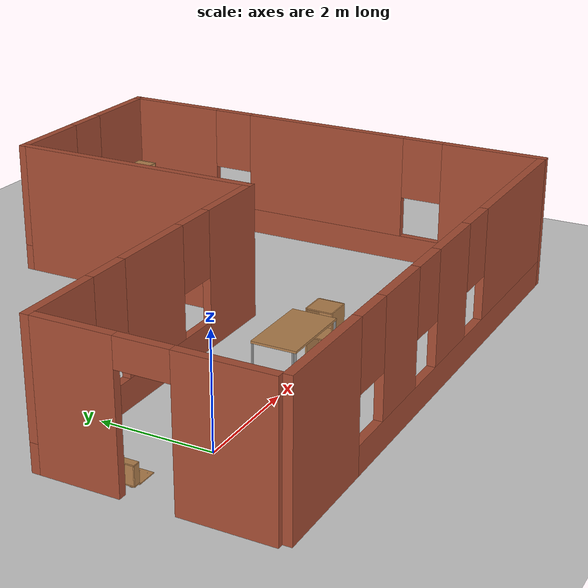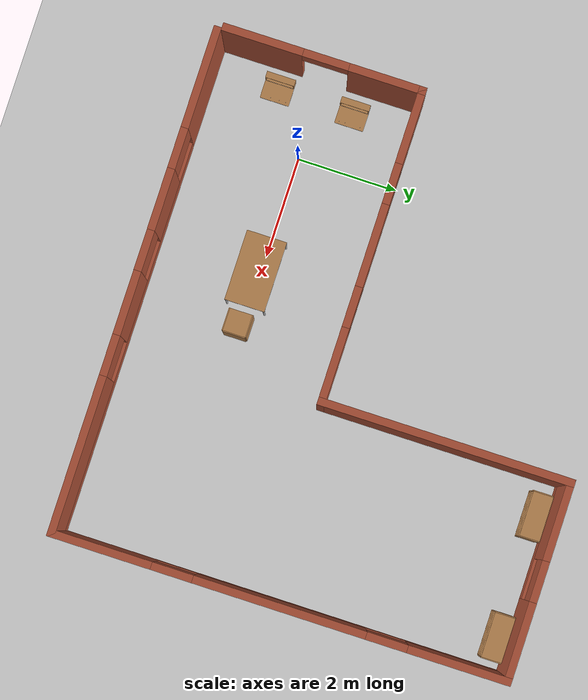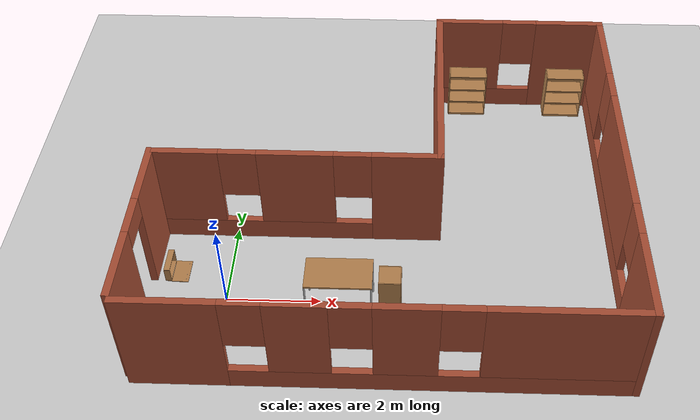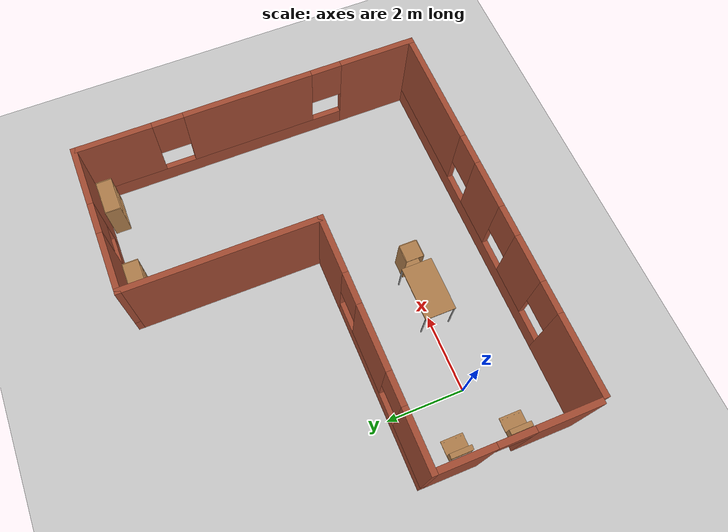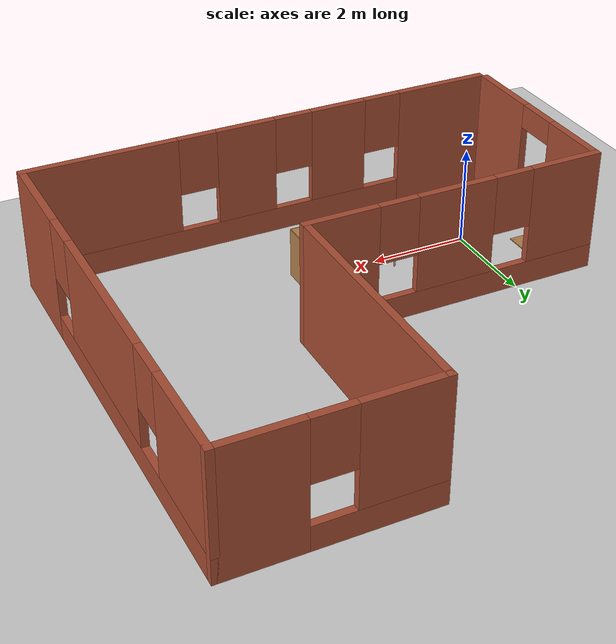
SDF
<sdf version="1.6">
 <world name="default">
  <light name="sun" type="directional">
   <pose>0 0 15 0 -0 0</pose>
   <diffuse>1 1 1 1</diffuse>
   <specular>0.1 0.1 0.1 1</specular>
   <attenuation>
    <range>1000</range>
    <constant>0.9</constant>
    <linear>0.01</linear>
    <quadratic>0.001</quadratic>
   </attenuation>
   <direction>-0.5 0.5 -1</direction>
  </light>
  <model name="ground_plane">
   <static>1</static>
   <link name="link">
    <collision name="collision">
     <geometry><plane><normal>0 0 1</normal><size>100 100</size></plane></geometry>
     <surface><friction><ode><mu>100</mu><mu2>50</mu2></ode></friction></surface>
    </collision>
    <visual name="visual">
     <transparency>1</transparency>
     <cast_shadows>0</cast_shadows>
     <geometry><plane><normal>0 0 1</normal><size>100 100</size></plane></geometry>
     <material>
      <script><uri>file://media/materials/scripts/gazebo.material</uri><name>Gazebo/Grey</name></script>
     </material>
    </visual>
   </link>
  </model>
  <gravity>0 0 -9.8</gravity>
  <magnetic_field>6e-06 2.3e-05 -4.2e-05</magnetic_field>
  <atmosphere type="adiabatic"/>
  <physics name="default_physics" default="0" type="ode">
   <max_step_size>0.001</max_step_size>
   <real_time_factor>1</real_time_factor>
   <real_time_update_rate>1000</real_time_update_rate>
  </physics>
  <scene><ambient>0.4 0.4 0.4 1</ambient><background>0.7 0.7 0.7 1</background><shadows>1</shadows></scene>
  <spherical_coordinates>
   <surface_model>EARTH_WGS84</surface_model>
   <latitude_deg>0</latitude_deg>
   <longitude_deg>0</longitude_deg>
   <elevation>0</elevation>
   <heading_deg>0</heading_deg>
  </spherical_coordinates>
  <model name="room3">
   <pose>3.33877 2.33833 0 0 -0 0</pose>
   <link name="Wall_0">
    <pose>0.05 -4.425 0 0 -0 0</pose>
    <visual name="Wall_0_Visual_0">
     <pose>-3.99903 0 1.25 0 -0 0</pose>
     <geometry><box><size>2.00194 0.15 2.5</size></box></geometry>
     <material>
      <script><uri>file://media/materials/scripts/gazebo.material</uri><name>Gazebo/Bricks</name></script>
      <ambient>0.996078 0.47451 0.0196078 1</ambient>
     </material>
    </visual>
    <collision name="Wall_0_Collision_0">
     <geometry><box><size>2.00194 0.15 2.5</size></box></geometry>
     <pose>-3.99903 0 1.25 0 -0 0</pose>
    </collision>
    <visual name="Wall_0_Visual_1">
     <pose>1.00097 0 0.25 0 -0 0</pose>
     <geometry><box><size>7.99806 0.15 0.5</size></box></geometry>
     <material>
      <script><uri>file://media/materials/scripts/gazebo.material</uri><name>Gazebo/Bricks</name></script>
      <ambient>0.996078 0.47451 0.0196078 1</ambient>
     </material>
    </visual>
    <collision name="Wall_0_Collision_1">
     <geometry><box><size>7.99806 0.15 0.5</size></box></geometry>
     <pose>1.00097 0 0.25 0 -0 0</pose>
    </collision>
    <visual name="Wall_0_Visual_2">
     <pose>-1.59428 0 1.5 0 -0 0</pose>
     <geometry><box><size>1.20755 0.15 2</size></box></geometry>
     <material>
      <script><uri>file://media/materials/scripts/gazebo.material</uri><name>Gazebo/Bricks</name></script>
      <ambient>0.996078 0.47451 0.0196078 1</ambient>
     </material>
    </visual>
    <collision name="Wall_0_Collision_2">
     <geometry><box><size>1.20755 0.15 2</size></box></geometry>
     <pose>-1.59428 0 1.5 0 -0 0</pose>
    </collision>
    <visual name="Wall_0_Visual_3">
     <pose>0.436084 0 1.5 0 -0 0</pose>
     <geometry><box><size>1.25318 0.15 2</size></box></geometry>
     <material>
      <script><uri>file://media/materials/scripts/gazebo.material</uri><name>Gazebo/Bricks</name></script>
      <ambient>0.996078 0.47451 0.0196078 1</ambient>
     </material>
    </visual>
    <collision name="Wall_0_Collision_3">
     <geometry><box><size>1.25318 0.15 2</size></box></geometry>
     <pose>0.436084 0 1.5 0 -0 0</pose>
    </collision>
    <visual name="Wall_0_Visual_4">
     <pose>3.43134 0 1.5 0 -0 0</pose>
     <geometry><box><size>3.13733 0.15 2</size></box></geometry>
     <material>
      <script><uri>file://media/materials/scripts/gazebo.material</uri><name>Gazebo/Bricks</name></script>
      <ambient>0.996078 0.47451 0.0196078 1</ambient>
     </material>
    </visual>
    <collision name="Wall_0_Collision_4">
     <geometry><box><size>3.13733 0.15 2</size></box></geometry>
     <pose>3.43134 0 1.5 0 -0 0</pose>
    </collision>
    <visual name="Wall_0_Visual_5">
     <pose>-2.59806 0 1.9 0 -0 0</pose>
     <geometry><box><size>0.8 0.15 1.2</size></box></geometry>
     <material>
      <script><uri>file://media/materials/scripts/gazebo.material</uri><name>Gazebo/Bricks</name></script>
      <ambient>0.996078 0.47451 0.0196078 1</ambient>
     </material>
    </visual>
    <collision name="Wall_0_Collision_5">
     <geometry><box><size>0.8 0.15 1.2</size></box></geometry>
     <pose>-2.59806 0 1.9 0 -0 0</pose>
    </collision>
    <visual name="Wall_0_Visual_6">
     <pose>-0.590506 0 1.9 0 -0 0</pose>
     <geometry><box><size>0.8 0.15 1.2</size></box></geometry>
     <material>
      <script><uri>file://media/materials/scripts/gazebo.material</uri><name>Gazebo/Bricks</name></script>
      <ambient>0.996078 0.47451 0.0196078 1</ambient>
     </material>
    </visual>
    <collision name="Wall_0_Collision_6">
     <geometry><box><size>0.8 0.15 1.2</size></box></geometry>
     <pose>-0.590506 0 1.9 0 -0 0</pose>
    </collision>
    <visual name="Wall_0_Visual_7">
     <pose>1.46267 0 1.9 0 -0 0</pose>
     <geometry><box><size>0.8 0.15 1.2</size></box></geometry>
     <material>
      <script><uri>file://media/materials/scripts/gazebo.material</uri><name>Gazebo/Bricks</name></script>
      <ambient>0.996078 0.47451 0.0196078 1</ambient>
     </material>
    </visual>
    <collision name="Wall_0_Collision_7">
     <geometry><box><size>0.8 0.15 1.2</size></box></geometry>
     <pose>1.46267 0 1.9 0 -0 0</pose>
    </collision>
   </link>
   <link name="Wall_1">
    <pose>4.975 0 0 0 -0 1.5708</pose>
    <visual name="Wall_1_Visual_0">
     <pose>-3.49143 0 1.25 0 -0 0</pose>
     <geometry><box><size>2.01715 0.15 2.5</size></box></geometry>
     <material>
      <script><uri>file://media/materials/scripts/gazebo.material</uri><name>Gazebo/Bricks</name></script>
      <ambient>0.996078 0.47451 0.0196078 1</ambient>
     </material>
    </visual>
    <collision name="Wall_1_Collision_0">
     <geometry><box><size>2.01715 0.15 2.5</size></box></geometry>
     <pose>-3.49143 0 1.25 0 -0 0</pose>
    </collision>
    <visual name="Wall_1_Visual_1">
     <pose>1.00857 0 0.25 0 -0 0</pose>
     <geometry><box><size>6.98285 0.15 0.5</size></box></geometry>
     <material>
      <script><uri>file://media/materials/scripts/gazebo.material</uri><name>Gazebo/Bricks</name></script>
      <ambient>0.996078 0.47451 0.0196078 1</ambient>
     </material>
    </visual>
    <collision name="Wall_1_Collision_1">
     <geometry><box><size>6.98285 0.15 0.5</size></box></geometry>
     <pose>1.00857 0 0.25 0 -0 0</pose>
    </collision>
    <visual name="Wall_1_Visual_2">
     <pose>0.000746 0 1.5 0 -0 0</pose>
     <geometry><box><size>3.3672 0.15 2</size></box></geometry>
     <material>
      <script><uri>file://media/materials/scripts/gazebo.material</uri><name>Gazebo/Bricks</name></script>
      <ambient>0.996078 0.47451 0.0196078 1</ambient>
     </material>
    </visual>
    <collision name="Wall_1_Collision_2">
     <geometry><box><size>3.3672 0.15 2</size></box></geometry>
     <pose>0.000746 0 1.5 0 -0 0</pose>
    </collision>
    <visual name="Wall_1_Visual_3">
     <pose>3.49217 0 1.5 0 -0 0</pose>
     <geometry><box><size>2.01566 0.15 2</size></box></geometry>
     <material>
      <script><uri>file://media/materials/scripts/gazebo.material</uri><name>Gazebo/Bricks</name></script>
      <ambient>0.996078 0.47451 0.0196078 1</ambient>
     </material>
    </visual>
    <collision name="Wall_1_Collision_3">
     <geometry><box><size>2.01566 0.15 2</size></box></geometry>
     <pose>3.49217 0 1.5 0 -0 0</pose>
    </collision>
    <visual name="Wall_1_Visual_4">
     <pose>-2.08285 0 1.9 0 -0 0</pose>
     <geometry><box><size>0.8 0.15 1.2</size></box></geometry>
     <material>
      <script><uri>file://media/materials/scripts/gazebo.material</uri><name>Gazebo/Bricks</name></script>
      <ambient>0.996078 0.47451 0.0196078 1</ambient>
     </material>
    </visual>
    <collision name="Wall_1_Collision_4">
     <geometry><box><size>0.8 0.15 1.2</size></box></geometry>
     <pose>-2.08285 0 1.9 0 -0 0</pose>
    </collision>
    <visual name="Wall_1_Visual_5">
     <pose>2.08434 0 1.9 0 -0 0</pose>
     <geometry><box><size>0.8 0.15 1.2</size></box></geometry>
     <material>
      <script><uri>file://media/materials/scripts/gazebo.material</uri><name>Gazebo/Bricks</name></script>
      <ambient>0.996078 0.47451 0.0196078 1</ambient>
     </material>
    </visual>
    <collision name="Wall_1_Collision_5">
     <geometry><box><size>0.8 0.15 1.2</size></box></geometry>
     <pose>2.08434 0 1.9 0 -0 0</pose>
    </collision>
   </link>
   <link name="Wall_2">
    <pose>3.05 4.425 0 0 -0 3.14159</pose>
    <visual name="Wall_2_Visual_0">
     <pose>-1.19938 0 1.25 0 -0 0</pose>
     <geometry><box><size>1.60124 0.15 2.5</size></box></geometry>
     <material>
      <script><uri>file://media/materials/scripts/gazebo.material</uri><name>Gazebo/Bricks</name></script>
      <ambient>0.996078 0.47451 0.0196078 1</ambient>
     </material>
    </visual>
    <collision name="Wall_2_Collision_0">
     <geometry><box><size>1.60124 0.15 2.5</size></box></geometry>
     <pose>-1.19938 0 1.25 0 -0 0</pose>
    </collision>
    <visual name="Wall_2_Visual_1">
     <pose>0.800621 0 0.25 0 -0 0</pose>
     <geometry><box><size>2.39876 0.15 0.5</size></box></geometry>
     <material>
      <script><uri>file://media/materials/scripts/gazebo.material</uri><name>Gazebo/Bricks</name></script>
      <ambient>0.996078 0.47451 0.0196078 1</ambient>
     </material>
    </visual>
    <collision name="Wall_2_Collision_1">
     <geometry><box><size>2.39876 0.15 0.5</size></box></geometry>
     <pose>0.800621 0 0.25 0 -0 0</pose>
    </collision>
    <visual name="Wall_2_Visual_2">
     <pose>1.20062 0 1.5 0 -0 0</pose>
     <geometry><box><size>1.59876 0.15 2</size></box></geometry>
     <material>
      <script><uri>file://media/materials/scripts/gazebo.material</uri><name>Gazebo/Bricks</name></script>
      <ambient>0.996078 0.47451 0.0196078 1</ambient>
     </material>
    </visual>
    <collision name="Wall_2_Collision_2">
     <geometry><box><size>1.59876 0.15 2</size></box></geometry>
     <pose>1.20062 0 1.5 0 -0 0</pose>
    </collision>
    <visual name="Wall_2_Visual_3">
     <pose>0.001241 0 1.9 0 -0 0</pose>
     <geometry><box><size>0.8 0.15 1.2</size></box></geometry>
     <material>
      <script><uri>file://media/materials/scripts/gazebo.material</uri><name>Gazebo/Bricks</name></script>
      <ambient>0.996078 0.47451 0.0196078 1</ambient>
     </material>
    </visual>
    <collision name="Wall_2_Collision_3">
     <geometry><box><size>0.8 0.15 1.2</size></box></geometry>
     <pose>0.001241 0 1.9 0 -0 0</pose>
    </collision>
   </link>
   <link name="Wall_3">
    <collision name="Wall_3_Collision">
     <geometry><box><size>5 0.15 2.5</size></box></geometry>
     <pose>0 0 1.25 0 -0 0</pose>
    </collision>
    <visual name="Wall_3_Visual">
     <pose>0 0 1.25 0 -0 0</pose>
     <geometry><box><size>5 0.15 2.5</size></box></geometry>
     <material>
      <script><uri>file://media/materials/scripts/gazebo.material</uri><name>Gazebo/Bricks</name></script>
      <ambient>0.996078 0.47451 0.0196078 1</ambient>
     </material>
    </visual>
    <pose>1.125 2 0 0 0 -1.5708</pose>
   </link>
   <link name="Wall_4">
    <pose>-1.925 -0.425 0 0 -0 3.14159</pose>
    <visual name="Wall_4_Visual_0">
     <pose>-2.36349 0 1.25 0 -0 0</pose>
     <geometry><box><size>1.52301 0.15 2.5</size></box></geometry>
     <material>
      <script><uri>file://media/materials/scripts/gazebo.material</uri><name>Gazebo/Bricks</name></script>
      <ambient>0.996078 0.47451 0.0196078 1</ambient>
     </material>
    </visual>
    <collision name="Wall_4_Collision_0">
     <geometry><box><size>1.52301 0.15 2.5</size></box></geometry>
     <pose>-2.36349 0 1.25 0 -0 0</pose>
    </collision>
    <visual name="Wall_4_Visual_1">
     <pose>0.761506 0 0.25 0 -0 0</pose>
     <geometry><box><size>4.72699 0.15 0.5</size></box></geometry>
     <material>
      <script><uri>file://media/materials/scripts/gazebo.material</uri><name>Gazebo/Bricks</name></script>
      <ambient>0.996078 0.47451 0.0196078 1</ambient>
     </material>
    </visual>
    <collision name="Wall_4_Collision_1">
     <geometry><box><size>4.72699 0.15 0.5</size></box></geometry>
     <pose>0.761506 0 0.25 0 -0 0</pose>
    </collision>
    <visual name="Wall_4_Visual_2">
     <pose>0.007107 0 1.5 0 -0 0</pose>
     <geometry><box><size>1.61819 0.15 2</size></box></geometry>
     <material>
      <script><uri>file://media/materials/scripts/gazebo.material</uri><name>Gazebo/Bricks</name></script>
      <ambient>0.996078 0.47451 0.0196078 1</ambient>
     </material>
    </visual>
    <collision name="Wall_4_Collision_2">
     <geometry><box><size>1.61819 0.15 2</size></box></geometry>
     <pose>0.007107 0 1.5 0 -0 0</pose>
    </collision>
    <visual name="Wall_4_Visual_3">
     <pose>2.3706 0 1.5 0 -0 0</pose>
     <geometry><box><size>1.5088 0.15 2</size></box></geometry>
     <material>
      <script><uri>file://media/materials/scripts/gazebo.material</uri><name>Gazebo/Bricks</name></script>
      <ambient>0.996078 0.47451 0.0196078 1</ambient>
     </material>
    </visual>
    <collision name="Wall_4_Collision_3">
     <geometry><box><size>1.5088 0.15 2</size></box></geometry>
     <pose>2.3706 0 1.5 0 -0 0</pose>
    </collision>
    <visual name="Wall_4_Visual_4">
     <pose>-1.20199 0 1.9 0 -0 0</pose>
     <geometry><box><size>0.8 0.15 1.2</size></box></geometry>
     <material>
      <script><uri>file://media/materials/scripts/gazebo.material</uri><name>Gazebo/Bricks</name></script>
      <ambient>0.996078 0.47451 0.0196078 1</ambient>
     </material>
    </visual>
    <collision name="Wall_4_Collision_4">
     <geometry><box><size>0.8 0.15 1.2</size></box></geometry>
     <pose>-1.20199 0 1.9 0 -0 0</pose>
    </collision>
    <visual name="Wall_4_Visual_5">
     <pose>1.2162 0 1.9 0 -0 0</pose>
     <geometry><box><size>0.8 0.15 1.2</size></box></geometry>
     <material>
      <script><uri>file://media/materials/scripts/gazebo.material</uri><name>Gazebo/Bricks</name></script>
      <ambient>0.996078 0.47451 0.0196078 1</ambient>
     </material>
    </visual>
    <collision name="Wall_4_Collision_5">
     <geometry><box><size>0.8 0.15 1.2</size></box></geometry>
     <pose>1.2162 0 1.9 0 -0 0</pose>
    </collision>
   </link>
   <link name="Wall_5">
    <pose>-4.975 -2.35 0 0 0 -1.5708</pose>
    <visual name="Wall_5_Visual_0">
     <pose>-1.24451 0 1.25 0 -0 0</pose>
     <geometry><box><size>1.51098 0.15 2.5</size></box></geometry>
     <material>
      <script><uri>file://media/materials/scripts/gazebo.material</uri><name>Gazebo/Bricks</name></script>
      <ambient>0.996078 0.47451 0.0196078 1</ambient>
     </material>
    </visual>
    <collision name="Wall_5_Collision_0">
     <geometry><box><size>1.51098 0.15 2.5</size></box></geometry>
     <pose>-1.24451 0 1.25 0 -0 0</pose>
    </collision>
    <visual name="Wall_5_Visual_1">
     <pose>1.20549 0 1.25 0 -0 0</pose>
     <geometry><box><size>1.58902 0.15 2.5</size></box></geometry>
     <material>
      <script><uri>file://media/materials/scripts/gazebo.material</uri><name>Gazebo/Bricks</name></script>
      <ambient>0.996078 0.47451 0.0196078 1</ambient>
     </material>
    </visual>
    <collision name="Wall_5_Collision_1">
     <geometry><box><size>1.58902 0.15 2.5</size></box></geometry>
     <pose>1.20549 0 1.25 0 -0 0</pose>
    </collision>
    <visual name="Wall_5_Visual_2">
     <pose>-0.039016 0 2.25 0 -0 0</pose>
     <geometry><box><size>0.9 0.15 0.5</size></box></geometry>
     <material>
      <script><uri>file://media/materials/scripts/gazebo.material</uri><name>Gazebo/Bricks</name></script>
      <ambient>0.996078 0.47451 0.0196078 1</ambient>
     </material>
    </visual>
    <collision name="Wall_5_Collision_2">
     <geometry><box><size>0.9 0.15 0.5</size></box></geometry>
     <pose>-0.039016 0 2.25 0 -0 0</pose>
    </collision>
   </link>
   <static>1</static>
  </model>
  <model name="table">
   <static>0</static>
   <link name="link">
    <collision name="surface">
     <pose>0 0 1 0 -0 0</pose>
     <geometry><box><size>1.5 0.8 0.03</size></box></geometry>
     <surface><friction><ode><mu>0.6</mu><mu2>0.6</mu2></ode></friction></surface>
    </collision>
    <visual name="visual1">
     <pose>0 0 1 0 -0 0</pose>
     <geometry><box><size>1.4 0.8 0.04</size></box></geometry>
     <material>
      <script><uri>file://media/materials/scripts/gazebo.material</uri><name>Gazebo/Wood</name></script>
     </material>
    </visual>
    <collision name="front_left_leg">
     <pose>0.68 0.38 0.5 0 -0 0</pose>
     <geometry><cylinder><radius>0.02</radius><length>1</length></cylinder></geometry>
    </collision>
    <visual name="front_left_leg">
     <pose>0.68 0.38 0.5 0 -0 0</pose>
     <geometry><cylinder><radius>0.02</radius><length>1</length></cylinder></geometry>
     <material>
      <script><uri>file://media/materials/scripts/gazebo.material</uri><name>Gazebo/Grey</name></script>
     </material>
    </visual>
    <collision name="front_right_leg">
     <pose>0.68 -0.38 0.5 0 -0 0</pose>
     <geometry><cylinder><radius>0.02</radius><length>1</length></cylinder></geometry>
    </collision>
    <visual name="front_right_leg">
     <pose>0.68 -0.38 0.5 0 -0 0</pose>
     <geometry><cylinder><radius>0.02</radius><length>1</length></cylinder></geometry>
     <material>
      <script><uri>file://media/materials/scripts/gazebo.material</uri><name>Gazebo/Grey</name></script>
     </material>
    </visual>
    <collision name="back_right_leg">
     <pose>-0.68 -0.38 0.5 0 -0 0</pose>
     <geometry><cylinder><radius>0.02</radius><length>1</length></cylinder></geometry>
    </collision>
    <visual name="back_right_leg">
     <pose>-0.68 -0.38 0.5 0 -0 0</pose>
     <geometry><cylinder><radius>0.02</radius><length>1</length></cylinder></geometry>
     <material>
      <script><uri>file://media/materials/scripts/gazebo.material</uri><name>Gazebo/Grey</name></script>
     </material>
    </visual>
    <collision name="back_left_leg">
     <pose>-0.68 0.38 0.5 0 -0 0</pose>
     <geometry><cylinder><radius>0.02</radius><length>1</length></cylinder></geometry>
    </collision>
    <visual name="back_left_leg">
     <pose>-0.68 0.38 0.5 0 -0 0</pose>
     <geometry><cylinder><radius>0.02</radius><length>1</length></cylinder></geometry>
     <material>
      <script><uri>file://media/materials/scripts/gazebo.material</uri><name>Gazebo/Grey</name></script>
     </material>
    </visual>
    <inertial>
     <inertia><ixx>1</ixx><ixy>0</ixy><ixz>0</ixz><iyy>1</iyy><iyz>0</iyz><izz>1</izz></inertia>
     <mass>1</mass>
    </inertial>
   </link>
   <pose>2.41114 -0.066281 -9e-06 2e-06 -0 0</pose>
  </model>
  <light name="sun_0" type="directional">
   <pose>2.06323 3.68187 15 0 -0 0</pose>
   <diffuse>1 1 1 1</diffuse>
   <specular>0.1 0.1 0.1 1</specular>
   <attenuation>
    <range>1000</range>
    <constant>0.9</constant>
    <linear>0.01</linear>
    <quadratic>0.001</quadratic>
   </attenuation>
   <direction>-0.5 0.5 -1</direction>
  </light>
  <model name="bookshelf">
   <static>1</static>
   <link name="link">
    <inertial><mass>1</mass></inertial>
    <collision name="back">
     <pose>0 0.005 0.6 0 -0 0</pose>
     <geometry><box><size>0.9 0.01 1.2</size></box></geometry>
    </collision>
    <visual name="visual1">
     <pose>0 0.005 0.6 0 -0 0</pose>
     <geometry><box><size>0.9 0.01 1.2</size></box></geometry>
     <material>
      <script><uri>file://media/materials/scripts/gazebo.material</uri><name>Gazebo/Wood</name></script>
     </material>
    </visual>
    <collision name="left_side">
     <pose>0.45 -0.195 0.6 0 -0 0</pose>
     <geometry><box><size>0.02 0.4 1.2</size></box></geometry>
    </collision>
    <visual name="visual2">
     <pose>0.45 -0.195 0.6 0 -0 0</pose>
     <geometry><box><size>0.02 0.4 1.2</size></box></geometry>
     <material>
      <script><uri>file://media/materials/scripts/gazebo.material</uri><name>Gazebo/Wood</name></script>
     </material>
    </visual>
    <collision name="right_side">
     <pose>-0.45 -0.195 0.6 0 -0 0</pose>
     <geometry><box><size>0.02 0.4 1.2</size></box></geometry>
    </collision>
    <visual name="visual3">
     <pose>-0.45 -0.195 0.6 0 -0 0</pose>
     <geometry><box><size>0.02 0.4 1.2</size></box></geometry>
     <material>
      <script><uri>file://media/materials/scripts/gazebo.material</uri><name>Gazebo/Wood</name></script>
     </material>
    </visual>
    <collision name="bottom">
     <pose>0 -0.195 0.03 0 -0 0</pose>
     <geometry><box><size>0.88 0.4 0.06</size></box></geometry>
    </collision>
    <visual name="visual4">
     <pose>0 -0.195 0.03 0 -0 0</pose>
     <geometry><box><size>0.88 0.4 0.06</size></box></geometry>
     <material>
      <script><uri>file://media/materials/scripts/gazebo.material</uri><name>Gazebo/Wood</name></script>
     </material>
    </visual>
    <collision name="top">
     <pose>0 -0.195 1.19 0 -0 0</pose>
     <geometry><box><size>0.88 0.4 0.02</size></box></geometry>
    </collision>
    <visual name="visual5">
     <pose>0 -0.195 1.19 0 -0 0</pose>
     <geometry><box><size>0.88 0.4 0.02</size></box></geometry>
     <material>
      <script><uri>file://media/materials/scripts/gazebo.material</uri><name>Gazebo/Wood</name></script>
     </material>
    </visual>
    <collision name="low_shelf">
     <pose>0 -0.195 0.43 0 -0 0</pose>
     <geometry><box><size>0.88 0.4 0.02</size></box></geometry>
    </collision>
    <visual name="visual6">
     <pose>0 -0.195 0.43 0 -0 0</pose>
     <geometry><box><size>0.88 0.4 0.02</size></box></geometry>
     <material>
      <script><uri>file://media/materials/scripts/gazebo.material</uri><name>Gazebo/Wood</name></script>
     </material>
    </visual>
    <collision name="high_shelf">
     <pose>0 -0.195 0.8 0 -0 0</pose>
     <geometry><box><size>0.88 0.4 0.02</size></box></geometry>
    </collision>
    <visual name="visual7">
     <pose>0 -0.195 0.8 0 -0 0</pose>
     <geometry><box><size>0.88 0.4 0.02</size></box></geometry>
     <material>
      <script><uri>file://media/materials/scripts/gazebo.material</uri><name>Gazebo/Wood</name></script>
     </material>
    </visual>
   </link>
   <pose>5.21925 6.63279 0 0 -0 0</pose>
  </model>
  <model name="bookshelf_0">
   <static>1</static>
   <link name="link">
    <inertial><mass>1</mass></inertial>
    <collision name="back">
     <pose>0 0.005 0.6 0 -0 0</pose>
     <geometry><box><size>0.9 0.01 1.2</size></box></geometry>
    </collision>
    <visual name="visual1">
     <pose>0 0.005 0.6 0 -0 0</pose>
     <geometry><box><size>0.9 0.01 1.2</size></box></geometry>
     <material>
      <script><uri>file://media/materials/scripts/gazebo.material</uri><name>Gazebo/Wood</name></script>
     </material>
    </visual>
    <collision name="left_side">
     <pose>0.45 -0.195 0.6 0 -0 0</pose>
     <geometry><box><size>0.02 0.4 1.2</size></box></geometry>
    </collision>
    <visual name="visual2">
     <pose>0.45 -0.195 0.6 0 -0 0</pose>
     <geometry><box><size>0.02 0.4 1.2</size></box></geometry>
     <material>
      <script><uri>file://media/materials/scripts/gazebo.material</uri><name>Gazebo/Wood</name></script>
     </material>
    </visual>
    <collision name="right_side">
     <pose>-0.45 -0.195 0.6 0 -0 0</pose>
     <geometry><box><size>0.02 0.4 1.2</size></box></geometry>
    </collision>
    <visual name="visual3">
     <pose>-0.45 -0.195 0.6 0 -0 0</pose>
     <geometry><box><size>0.02 0.4 1.2</size></box></geometry>
     <material>
      <script><uri>file://media/materials/scripts/gazebo.material</uri><name>Gazebo/Wood</name></script>
     </material>
    </visual>
    <collision name="bottom">
     <pose>0 -0.195 0.03 0 -0 0</pose>
     <geometry><box><size>0.88 0.4 0.06</size></box></geometry>
    </collision>
    <visual name="visual4">
     <pose>0 -0.195 0.03 0 -0 0</pose>
     <geometry><box><size>0.88 0.4 0.06</size></box></geometry>
     <material>
      <script><uri>file://media/materials/scripts/gazebo.material</uri><name>Gazebo/Wood</name></script>
     </material>
    </visual>
    <collision name="top">
     <pose>0 -0.195 1.19 0 -0 0</pose>
     <geometry><box><size>0.88 0.4 0.02</size></box></geometry>
    </collision>
    <visual name="visual5">
     <pose>0 -0.195 1.19 0 -0 0</pose>
     <geometry><box><size>0.88 0.4 0.02</size></box></geometry>
     <material>
      <script><uri>file://media/materials/scripts/gazebo.material</uri><name>Gazebo/Wood</name></script>
     </material>
    </visual>
    <collision name="low_shelf">
     <pose>0 -0.195 0.43 0 -0 0</pose>
     <geometry><box><size>0.88 0.4 0.02</size></box></geometry>
    </collision>
    <visual name="visual6">
     <pose>0 -0.195 0.43 0 -0 0</pose>
     <geometry><box><size>0.88 0.4 0.02</size></box></geometry>
     <material>
      <script><uri>file://media/materials/scripts/gazebo.material</uri><name>Gazebo/Wood</name></script>
     </material>
    </visual>
    <collision name="high_shelf">
     <pose>0 -0.195 0.8 0 -0 0</pose>
     <geometry><box><size>0.88 0.4 0.02</size></box></geometry>
    </collision>
    <visual name="visual7">
     <pose>0 -0.195 0.8 0 -0 0</pose>
     <geometry><box><size>0.88 0.4 0.02</size></box></geometry>
     <material>
      <script><uri>file://media/materials/scripts/gazebo.material</uri><name>Gazebo/Wood</name></script>
     </material>
    </visual>
   </link>
   <pose>7.62088 6.64081 0 0 -0 0</pose>
  </model>
  <model name="wooden_case">
   <link name="base">
    <pose>0 0 0.024 0 -0 0</pose>
    <inertial>
     <pose>-0.022184 0 0.171592 0 -0 0</pose>
     <mass>3.96264</mass>
     <inertia>
      <ixx>0.213536</ixx>
      <ixy>0</ixy>
      <ixz>0.000779377</ixz>
      <iyy>0.0708943</iyy>
      <iyz>0</iyz>
      <izz>0.154604</izz>
     </inertia>
    </inertial>
    <collision name="collision_back">
     <pose>-0.053975 0 0.1778 0 -0 0</pose>
     <geometry><box><size>0.01905 0.5461 0.3175</size></box></geometry>
     <surface>
      <contact>
       <poissons_ratio>0.347</poissons_ratio>
       <elastic_modulus>8.8e+09</elastic_modulus>
       <ode><kp>100000</kp><kd>100</kd><max_vel>100</max_vel><min_depth>0.001</min_depth></ode>
      </contact>
      <friction>
       <torsional>
        <coefficient>1</coefficient>
        <use_patch_radius>0</use_patch_radius>
        <surface_radius>0.01</surface_radius>
       </torsional>
      </friction>
     </surface>
    </collision>
    <visual name="visual_back">
     <pose>-0.053975 0 0.1778 0 -0 0</pose>
     <geometry><box><size>0.01905 0.5461 0.3175</size></box></geometry>
     <material>
      <script><uri>file://media/materials/scripts/gazebo.material</uri><name>Gazebo/Wood</name></script>
     </material>
    </visual>
    <collision name="collision_bottom">
     <pose>0 0 0.009525 0 -0 0</pose>
     <geometry><box><size>0.127 0.5842 0.01905</size></box></geometry>
     <surface>
      <contact>
       <poissons_ratio>0.347</poissons_ratio>
       <elastic_modulus>8.8e+09</elastic_modulus>
       <ode><kp>100000</kp><kd>100</kd><max_vel>100</max_vel><min_depth>0.001</min_depth></ode>
      </contact>
      <friction>
       <torsional>
        <coefficient>1</coefficient>
        <use_patch_radius>0</use_patch_radius>
        <surface_radius>0.01</surface_radius>
       </torsional>
      </friction>
     </surface>
    </collision>
    <visual name="visual_bottom">
     <pose>0 0 0.009525 0 -0 0</pose>
     <geometry><box><size>0.127 0.5842 0.01905</size></box></geometry>
     <material>
      <script><uri>file://media/materials/scripts/gazebo.material</uri><name>Gazebo/Wood</name></script>
     </material>
    </visual>
    <collision name="collision_top">
     <pose>0 0 0.346075 0 -0 0</pose>
     <geometry><box><size>0.127 0.5842 0.01905</size></box></geometry>
     <surface>
      <contact>
       <poissons_ratio>0.347</poissons_ratio>
       <elastic_modulus>8.8e+09</elastic_modulus>
       <ode><kp>100000</kp><kd>100</kd><max_vel>100</max_vel><min_depth>0.001</min_depth></ode>
      </contact>
      <friction>
       <torsional>
        <coefficient>1</coefficient>
        <use_patch_radius>0</use_patch_radius>
        <surface_radius>0.01</surface_radius>
       </torsional>
      </friction>
     </surface>
    </collision>
    <visual name="visual_top">
     <pose>0 0 0.346075 0 -0 0</pose>
     <geometry><box><size>0.127 0.5842 0.01905</size></box></geometry>
     <material>
      <script><uri>file://media/materials/scripts/gazebo.material</uri><name>Gazebo/Wood</name></script>
     </material>
    </visual>
    <collision name="collision_left">
     <pose>0 -0.282575 0.1778 0 -0 0</pose>
     <geometry><box><size>0.127 0.01905 0.3175</size></box></geometry>
     <surface>
      <contact>
       <poissons_ratio>0.347</poissons_ratio>
       <elastic_modulus>8.8e+09</elastic_modulus>
       <ode><kp>100000</kp><kd>100</kd><max_vel>100</max_vel><min_depth>0.001</min_depth></ode>
      </contact>
      <friction>
       <torsional>
        <coefficient>1</coefficient>
        <use_patch_radius>0</use_patch_radius>
        <surface_radius>0.01</surface_radius>
       </torsional>
      </friction>
     </surface>
    </collision>
    <visual name="visual_left">
     <pose>0 -0.282575 0.1778 0 -0 0</pose>
     <geometry><box><size>0.127 0.01905 0.3175</size></box></geometry>
     <material>
      <script><uri>file://media/materials/scripts/gazebo.material</uri><name>Gazebo/Wood</name></script>
     </material>
    </visual>
    <collision name="collision_right">
     <pose>0 0.282575 0.1778 0 -0 0</pose>
     <geometry><box><size>0.127 0.01905 0.3175</size></box></geometry>
     <surface>
      <contact>
       <poissons_ratio>0.347</poissons_ratio>
       <elastic_modulus>8.8e+09</elastic_modulus>
       <ode><kp>100000</kp><kd>100</kd><max_vel>100</max_vel><min_depth>0.001</min_depth></ode>
      </contact>
      <friction>
       <torsional>
        <coefficient>1</coefficient>
        <use_patch_radius>0</use_patch_radius>
        <surface_radius>0.01</surface_radius>
       </torsional>
      </friction>
     </surface>
    </collision>
    <visual name="visual_right">
     <pose>0 0.282575 0.1778 0 -0 0</pose>
     <geometry><box><size>0.127 0.01905 0.3175</size></box></geometry>
     <material>
      <script><uri>file://media/materials/scripts/gazebo.material</uri><name>Gazebo/Wood</name></script>
     </material>
    </visual>
    <collision name="collision_block_left">
     <pose>0.0095 -0.2151 -0.012 0 -0 0</pose>
     <geometry><box><size>0.108 0.05 0.024</size></box></geometry>
     <surface>
      <contact>
       <poissons_ratio>0.347</poissons_ratio>
       <elastic_modulus>8.8e+09</elastic_modulus>
       <ode><kp>100000</kp><kd>100</kd><max_vel>100</max_vel><min_depth>0.001</min_depth></ode>
      </contact>
      <friction>
       <torsional>
        <coefficient>1</coefficient>
        <use_patch_radius>0</use_patch_radius>
        <surface_radius>0.01</surface_radius>
       </torsional>
      </friction>
     </surface>
    </collision>
    <visual name="visual_block_left">
     <pose>0.0095 -0.2151 -0.012 0 -0 0</pose>
     <geometry><box><size>0.108 0.05 0.024</size></box></geometry>
     <material>
      <script><uri>file://media/materials/scripts/gazebo.material</uri><name>Gazebo/Wood</name></script>
     </material>
    </visual>
    <collision name="collision_block_right">
     <pose>0.0095 0.2151 -0.012 0 -0 0</pose>
     <geometry><box><size>0.108 0.05 0.024</size></box></geometry>
     <surface>
      <contact>
       <poissons_ratio>0.347</poissons_ratio>
       <elastic_modulus>8.8e+09</elastic_modulus>
       <ode><kp>100000</kp><kd>100</kd><max_vel>100</max_vel><min_depth>0.001</min_depth></ode>
      </contact>
      <friction>
       <torsional>
        <coefficient>1</coefficient>
        <use_patch_radius>0</use_patch_radius>
        <surface_radius>0.01</surface_radius>
       </torsional>
      </friction>
     </surface>
    </collision>
    <visual name="visual_block_right">
     <pose>0.0095 0.2151 -0.012 0 -0 0</pose>
     <geometry><box><size>0.108 0.05 0.024</size></box></geometry>
     <material>
      <script><uri>file://media/materials/scripts/gazebo.material</uri><name>Gazebo/Wood</name></script>
     </material>
    </visual>
   </link>
   <link name="lid">
    <pose>0.243775 0 0.009525 0 -0 0</pose>
    <inertial>
     <mass>1.97874</mass>
     <inertia>
      <ixx>0.0563367</ixx>
      <ixy>0</ixy>
      <ixz>0</ixz>
      <iyy>0.020911</iyy>
      <iyz>0</iyz>
      <izz>0.0771281</izz>
     </inertia>
    </inertial>
    <collision name="collision">
     <geometry><box><size>0.3556 0.5842 0.01905</size></box></geometry>
     <surface>
      <contact>
       <poissons_ratio>0.347</poissons_ratio>
       <elastic_modulus>8.8e+09</elastic_modulus>
       <ode><kp>100000</kp><kd>100</kd><max_vel>100</max_vel><min_depth>0.001</min_depth></ode>
      </contact>
      <friction>
       <torsional>
        <coefficient>1</coefficient>
        <use_patch_radius>0</use_patch_radius>
        <surface_radius>0.01</surface_radius>
       </torsional>
      </friction>
     </surface>
    </collision>
    <visual name="visual">
     <geometry><box><size>0.3556 0.5842 0.01905</size></box></geometry>
     <material>
      <script><uri>file://media/materials/scripts/gazebo.material</uri><name>Gazebo/Wood</name></script>
     </material>
    </visual>
    <visual name="tee_nut_1">
     <pose>0.122 -0.216 0 0 -0 0</pose>
     <geometry><cylinder><radius>0.00635</radius><length>0.0192405</length></cylinder></geometry>
     <material>
      <script><uri>file://media/materials/scripts/gazebo.material</uri><name>Gazebo/Grey</name></script>
     </material>
    </visual>
    <visual name="tee_nut_2">
     <pose>0.122 -0.088 0 0 -0 0</pose>
     <geometry><cylinder><radius>0.00635</radius><length>0.0192405</length></cylinder></geometry>
     <material>
      <script><uri>file://media/materials/scripts/gazebo.material</uri><name>Gazebo/Grey</name></script>
     </material>
    </visual>
    <visual name="tee_nut_3">
     <pose>0.122 0.088 0 0 -0 0</pose>
     <geometry><cylinder><radius>0.00635</radius><length>0.0192405</length></cylinder></geometry>
     <material>
      <script><uri>file://media/materials/scripts/gazebo.material</uri><name>Gazebo/Grey</name></script>
     </material>
    </visual>
    <visual name="tee_nut_4">
     <pose>0.122 0.216 0 0 -0 0</pose>
     <geometry><cylinder><radius>0.00635</radius><length>0.0192405</length></cylinder></geometry>
     <material>
      <script><uri>file://media/materials/scripts/gazebo.material</uri><name>Gazebo/Grey</name></script>
     </material>
    </visual>
   </link>
   <joint name="lid_hinge" type="revolute">
    <pose>-0.1778 0 0.01905 0 -0 0</pose>
    <parent>base</parent>
    <child>lid</child>
    <axis>
     <xyz>0 1 0</xyz>
     <limit><upper>0.523599</upper><lower>-1.5708</lower></limit>
     <use_parent_model_frame>0</use_parent_model_frame>
     <dynamics><spring_reference>0</spring_reference><spring_stiffness>0</spring_stiffness></dynamics>
    </axis>
   </joint>
   <pose>-1.34405 -0.794077 -0.001057 0 -0.000429 0</pose>
  </model>
  <model name="wooden_case_0">
   <link name="base">
    <pose>0 0 0.024 0 -0 0</pose>
    <inertial>
     <pose>-0.022184 0 0.171592 0 -0 0</pose>
     <mass>3.96264</mass>
     <inertia>
      <ixx>0.213536</ixx>
      <ixy>0</ixy>
      <ixz>0.000779377</ixz>
      <iyy>0.0708943</iyy>
      <iyz>0</iyz>
      <izz>0.154604</izz>
     </inertia>
    </inertial>
    <collision name="collision_back">
     <pose>-0.053975 0 0.1778 0 -0 0</pose>
     <geometry><box><size>0.01905 0.5461 0.3175</size></box></geometry>
     <surface>
      <contact>
       <poissons_ratio>0.347</poissons_ratio>
       <elastic_modulus>8.8e+09</elastic_modulus>
       <ode><kp>100000</kp><kd>100</kd><max_vel>100</max_vel><min_depth>0.001</min_depth></ode>
      </contact>
      <friction>
       <torsional>
        <coefficient>1</coefficient>
        <use_patch_radius>0</use_patch_radius>
        <surface_radius>0.01</surface_radius>
       </torsional>
      </friction>
     </surface>
    </collision>
    <visual name="visual_back">
     <pose>-0.053975 0 0.1778 0 -0 0</pose>
     <geometry><box><size>0.01905 0.5461 0.3175</size></box></geometry>
     <material>
      <script><uri>file://media/materials/scripts/gazebo.material</uri><name>Gazebo/Wood</name></script>
     </material>
    </visual>
    <collision name="collision_bottom">
     <pose>0 0 0.009525 0 -0 0</pose>
     <geometry><box><size>0.127 0.5842 0.01905</size></box></geometry>
     <surface>
      <contact>
       <poissons_ratio>0.347</poissons_ratio>
       <elastic_modulus>8.8e+09</elastic_modulus>
       <ode><kp>100000</kp><kd>100</kd><max_vel>100</max_vel><min_depth>0.001</min_depth></ode>
      </contact>
      <friction>
       <torsional>
        <coefficient>1</coefficient>
        <use_patch_radius>0</use_patch_radius>
        <surface_radius>0.01</surface_radius>
       </torsional>
      </friction>
     </surface>
    </collision>
    <visual name="visual_bottom">
     <pose>0 0 0.009525 0 -0 0</pose>
     <geometry><box><size>0.127 0.5842 0.01905</size></box></geometry>
     <material>
      <script><uri>file://media/materials/scripts/gazebo.material</uri><name>Gazebo/Wood</name></script>
     </material>
    </visual>
    <collision name="collision_top">
     <pose>0 0 0.346075 0 -0 0</pose>
     <geometry><box><size>0.127 0.5842 0.01905</size></box></geometry>
     <surface>
      <contact>
       <poissons_ratio>0.347</poissons_ratio>
       <elastic_modulus>8.8e+09</elastic_modulus>
       <ode><kp>100000</kp><kd>100</kd><max_vel>100</max_vel><min_depth>0.001</min_depth></ode>
      </contact>
      <friction>
       <torsional>
        <coefficient>1</coefficient>
        <use_patch_radius>0</use_patch_radius>
        <surface_radius>0.01</surface_radius>
       </torsional>
      </friction>
     </surface>
    </collision>
    <visual name="visual_top">
     <pose>0 0 0.346075 0 -0 0</pose>
     <geometry><box><size>0.127 0.5842 0.01905</size></box></geometry>
     <material>
      <script><uri>file://media/materials/scripts/gazebo.material</uri><name>Gazebo/Wood</name></script>
     </material>
    </visual>
    <collision name="collision_left">
     <pose>0 -0.282575 0.1778 0 -0 0</pose>
     <geometry><box><size>0.127 0.01905 0.3175</size></box></geometry>
     <surface>
      <contact>
       <poissons_ratio>0.347</poissons_ratio>
       <elastic_modulus>8.8e+09</elastic_modulus>
       <ode><kp>100000</kp><kd>100</kd><max_vel>100</max_vel><min_depth>0.001</min_depth></ode>
      </contact>
      <friction>
       <torsional>
        <coefficient>1</coefficient>
        <use_patch_radius>0</use_patch_radius>
        <surface_radius>0.01</surface_radius>
       </torsional>
      </friction>
     </surface>
    </collision>
    <visual name="visual_left">
     <pose>0 -0.282575 0.1778 0 -0 0</pose>
     <geometry><box><size>0.127 0.01905 0.3175</size></box></geometry>
     <material>
      <script><uri>file://media/materials/scripts/gazebo.material</uri><name>Gazebo/Wood</name></script>
     </material>
    </visual>
    <collision name="collision_right">
     <pose>0 0.282575 0.1778 0 -0 0</pose>
     <geometry><box><size>0.127 0.01905 0.3175</size></box></geometry>
     <surface>
      <contact>
       <poissons_ratio>0.347</poissons_ratio>
       <elastic_modulus>8.8e+09</elastic_modulus>
       <ode><kp>100000</kp><kd>100</kd><max_vel>100</max_vel><min_depth>0.001</min_depth></ode>
      </contact>
      <friction>
       <torsional>
        <coefficient>1</coefficient>
        <use_patch_radius>0</use_patch_radius>
        <surface_radius>0.01</surface_radius>
       </torsional>
      </friction>
     </surface>
    </collision>
    <visual name="visual_right">
     <pose>0 0.282575 0.1778 0 -0 0</pose>
     <geometry><box><size>0.127 0.01905 0.3175</size></box></geometry>
     <material>
      <script><uri>file://media/materials/scripts/gazebo.material</uri><name>Gazebo/Wood</name></script>
     </material>
    </visual>
    <collision name="collision_block_left">
     <pose>0.0095 -0.2151 -0.012 0 -0 0</pose>
     <geometry><box><size>0.108 0.05 0.024</size></box></geometry>
     <surface>
      <contact>
       <poissons_ratio>0.347</poissons_ratio>
       <elastic_modulus>8.8e+09</elastic_modulus>
       <ode><kp>100000</kp><kd>100</kd><max_vel>100</max_vel><min_depth>0.001</min_depth></ode>
      </contact>
      <friction>
       <torsional>
        <coefficient>1</coefficient>
        <use_patch_radius>0</use_patch_radius>
        <surface_radius>0.01</surface_radius>
       </torsional>
      </friction>
     </surface>
    </collision>
    <visual name="visual_block_left">
     <pose>0.0095 -0.2151 -0.012 0 -0 0</pose>
     <geometry><box><size>0.108 0.05 0.024</size></box></geometry>
     <material>
      <script><uri>file://media/materials/scripts/gazebo.material</uri><name>Gazebo/Wood</name></script>
     </material>
    </visual>
    <collision name="collision_block_right">
     <pose>0.0095 0.2151 -0.012 0 -0 0</pose>
     <geometry><box><size>0.108 0.05 0.024</size></box></geometry>
     <surface>
      <contact>
       <poissons_ratio>0.347</poissons_ratio>
       <elastic_modulus>8.8e+09</elastic_modulus>
       <ode><kp>100000</kp><kd>100</kd><max_vel>100</max_vel><min_depth>0.001</min_depth></ode>
      </contact>
      <friction>
       <torsional>
        <coefficient>1</coefficient>
        <use_patch_radius>0</use_patch_radius>
        <surface_radius>0.01</surface_radius>
       </torsional>
      </friction>
     </surface>
    </collision>
    <visual name="visual_block_right">
     <pose>0.0095 0.2151 -0.012 0 -0 0</pose>
     <geometry><box><size>0.108 0.05 0.024</size></box></geometry>
     <material>
      <script><uri>file://media/materials/scripts/gazebo.material</uri><name>Gazebo/Wood</name></script>
     </material>
    </visual>
   </link>
   <link name="lid">
    <pose>0.243775 0 0.009525 0 -0 0</pose>
    <inertial>
     <mass>1.97874</mass>
     <inertia>
      <ixx>0.0563367</ixx>
      <ixy>0</ixy>
      <ixz>0</ixz>
      <iyy>0.020911</iyy>
      <iyz>0</iyz>
      <izz>0.0771281</izz>
     </inertia>
    </inertial>
    <collision name="collision">
     <geometry><box><size>0.3556 0.5842 0.01905</size></box></geometry>
     <surface>
      <contact>
       <poissons_ratio>0.347</poissons_ratio>
       <elastic_modulus>8.8e+09</elastic_modulus>
       <ode><kp>100000</kp><kd>100</kd><max_vel>100</max_vel><min_depth>0.001</min_depth></ode>
      </contact>
      <friction>
       <torsional>
        <coefficient>1</coefficient>
        <use_patch_radius>0</use_patch_radius>
        <surface_radius>0.01</surface_radius>
       </torsional>
      </friction>
     </surface>
    </collision>
    <visual name="visual">
     <geometry><box><size>0.3556 0.5842 0.01905</size></box></geometry>
     <material>
      <script><uri>file://media/materials/scripts/gazebo.material</uri><name>Gazebo/Wood</name></script>
     </material>
    </visual>
    <visual name="tee_nut_1">
     <pose>0.122 -0.216 0 0 -0 0</pose>
     <geometry><cylinder><radius>0.00635</radius><length>0.0192405</length></cylinder></geometry>
     <material>
      <script><uri>file://media/materials/scripts/gazebo.material</uri><name>Gazebo/Grey</name></script>
     </material>
    </visual>
    <visual name="tee_nut_2">
     <pose>0.122 -0.088 0 0 -0 0</pose>
     <geometry><cylinder><radius>0.00635</radius><length>0.0192405</length></cylinder></geometry>
     <material>
      <script><uri>file://media/materials/scripts/gazebo.material</uri><name>Gazebo/Grey</name></script>
     </material>
    </visual>
    <visual name="tee_nut_3">
     <pose>0.122 0.088 0 0 -0 0</pose>
     <geometry><cylinder><radius>0.00635</radius><length>0.0192405</length></cylinder></geometry>
     <material>
      <script><uri>file://media/materials/scripts/gazebo.material</uri><name>Gazebo/Grey</name></script>
     </material>
    </visual>
    <visual name="tee_nut_4">
     <pose>0.122 0.216 0 0 -0 0</pose>
     <geometry><cylinder><radius>0.00635</radius><length>0.0192405</length></cylinder></geometry>
     <material>
      <script><uri>file://media/materials/scripts/gazebo.material</uri><name>Gazebo/Grey</name></script>
     </material>
    </visual>
   </link>
   <joint name="lid_hinge" type="revolute">
    <pose>-0.1778 0 0.01905 0 -0 0</pose>
    <parent>base</parent>
    <child>lid</child>
    <axis>
     <xyz>0 1 0</xyz>
     <limit><upper>0.523599</upper><lower>-1.5708</lower></limit>
     <use_parent_model_frame>0</use_parent_model_frame>
     <dynamics><spring_reference>0</spring_reference><spring_stiffness>0</spring_stiffness></dynamics>
    </axis>
   </joint>
   <pose>-1.32109 0.738216 -0.001057 0 -0.000429 0</pose>
  </model>
  <model name="cabinet">
   <static>1</static>
   <link name="cabinet_bottom_plate">
    <inertial>
     <pose>0 0 -1 0 -0 0</pose>
     <inertia><ixx>2.05</ixx><ixy>0</ixy><ixz>0</ixz><iyy>2.05</iyy><iyz>0</iyz><izz>2.05</izz></inertia>
     <mass>25</mass>
    </inertial>
    <collision name="cabinet_bottom_plate_geom">
     <pose>0 0 0.01 0 -0 0</pose>
     <geometry><box><size>0.45 0.45 0.02</size></box></geometry>
    </collision>
    <visual name="cabinet_bottom_plate_geom_visual">
     <pose>0 0 0.01 0 -0 0</pose>
     <geometry><box><size>0.45 0.45 0.02</size></box></geometry>
     <material>
      <script><uri>file://media/materials/scripts/gazebo.material</uri><name>Gazebo/Wood</name></script>
     </material>
    </visual>
    <collision name="cabinet_bottom_plate_geom_cabinet_back_plate">
     <pose>0.235 0 0.51 0 -0 0</pose>
     <geometry><box><size>0.02 0.45 1.02</size></box></geometry>
    </collision>
    <visual name="cabinet_bottom_plate_geom_cabinet_back_plate_visual">
     <pose>0.235 0 0.51 0 -0 0</pose>
     <geometry><box><size>0.02 0.45 1.02</size></box></geometry>
     <material>
      <script><uri>file://media/materials/scripts/gazebo.material</uri><name>Gazebo/Wood</name></script>
     </material>
    </visual>
    <collision name="cabinet_bottom_plate_geom_cabinet_left_plate">
     <pose>0 0.235 0.51 0 -0 0</pose>
     <geometry><box><size>0.45 0.02 1.02</size></box></geometry>
    </collision>
    <visual name="cabinet_bottom_plate_geom_cabinet_left_plate_visual">
     <pose>0 0.235 0.51 0 -0 0</pose>
     <geometry><box><size>0.45 0.02 1.02</size></box></geometry>
     <material>
      <script><uri>file://media/materials/scripts/gazebo.material</uri><name>Gazebo/Wood</name></script>
     </material>
    </visual>
    <collision name="cabinet_bottom_plate_geom_cabinet_middle_plate">
     <pose>0 0 0.51 0 -0 0</pose>
     <geometry><box><size>0.45 0.45 0.02</size></box></geometry>
    </collision>
    <visual name="cabinet_bottom_plate_geom_cabinet_middle_plate_visual">
     <pose>0 0 0.51 0 -0 0</pose>
     <geometry><box><size>0.45 0.45 0.02</size></box></geometry>
     <material>
      <script><uri>file://media/materials/scripts/gazebo.material</uri><name>Gazebo/Wood</name></script>
     </material>
    </visual>
    <collision name="cabinet_bottom_plate_geom_cabinet_right_plate">
     <pose>0 -0.235 0.51 0 -0 0</pose>
     <geometry><box><size>0.45 0.02 1.02</size></box></geometry>
    </collision>
    <visual name="cabinet_bottom_plate_geom_cabinet_right_plate_visual">
     <pose>0 -0.235 0.51 0 -0 0</pose>
     <geometry><box><size>0.45 0.02 1.02</size></box></geometry>
     <material>
      <script><uri>file://media/materials/scripts/gazebo.material</uri><name>Gazebo/Wood</name></script>
     </material>
    </visual>
    <collision name="cabinet_bottom_plate_geom_cabinet_top_plate">
     <pose>0 0 1.01 0 -0 0</pose>
     <geometry><box><size>0.45 0.45 0.02</size></box></geometry>
    </collision>
    <visual name="cabinet_bottom_plate_geom_cabinet_top_plate_visual">
     <pose>0 0 1.01 0 -0 0</pose>
     <geometry><box><size>0.45 0.45 0.02</size></box></geometry>
     <material>
      <script><uri>file://media/materials/scripts/gazebo.material</uri><name>Gazebo/Wood</name></script>
     </material>
    </visual>
   </link>
   <pose>3.4594 -0.08874 0 0 -0 0</pose>
  </model>
 </world>
</sdf>
